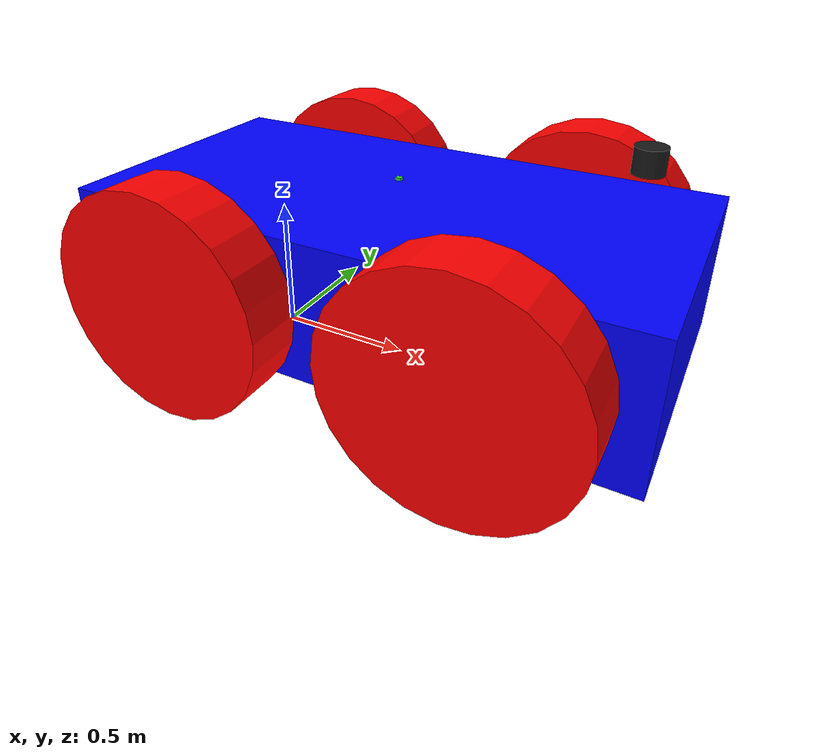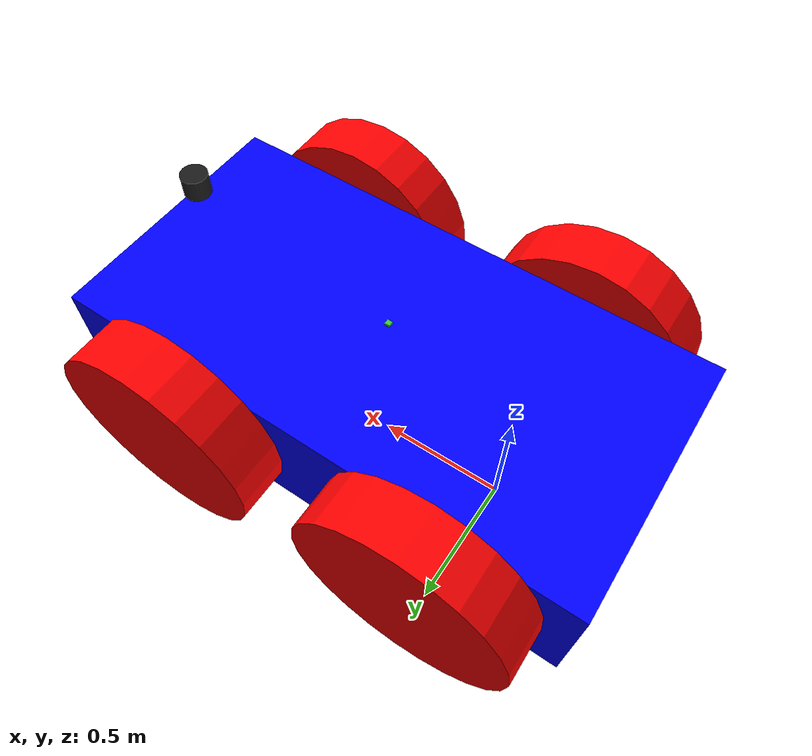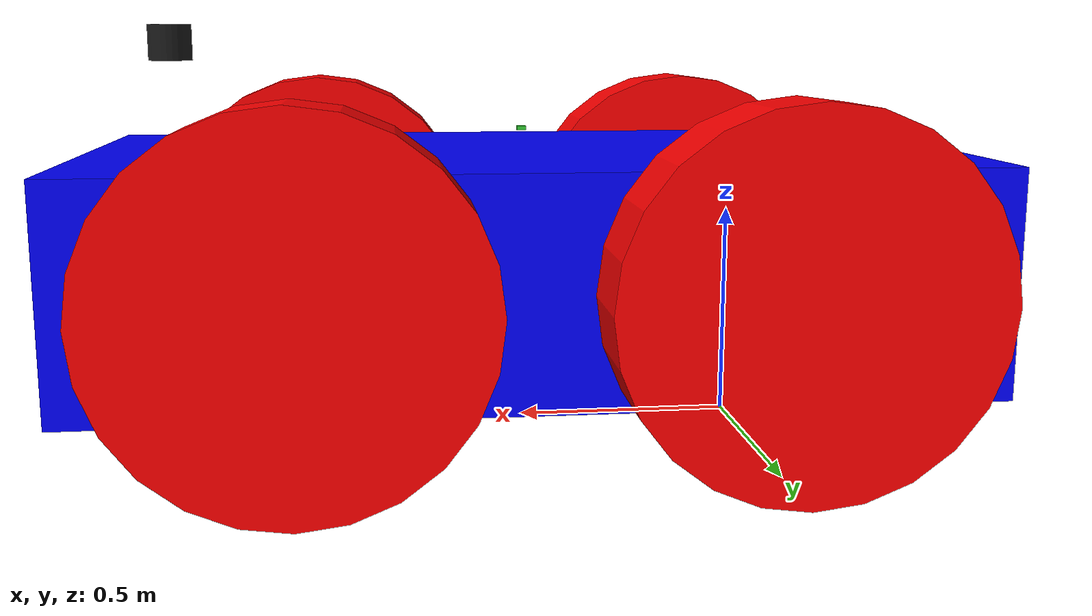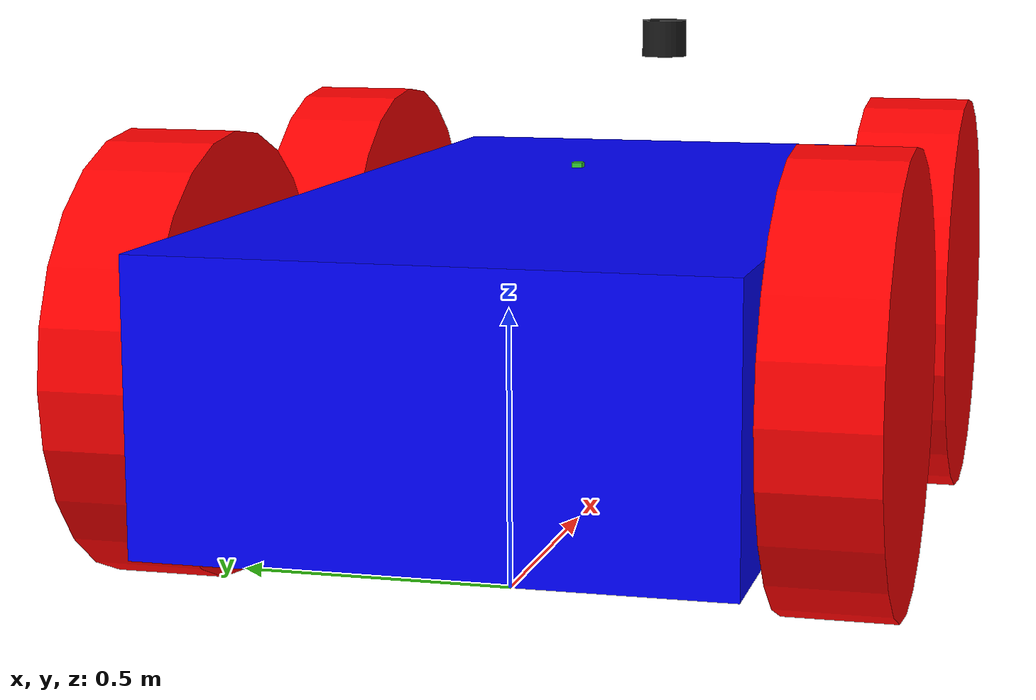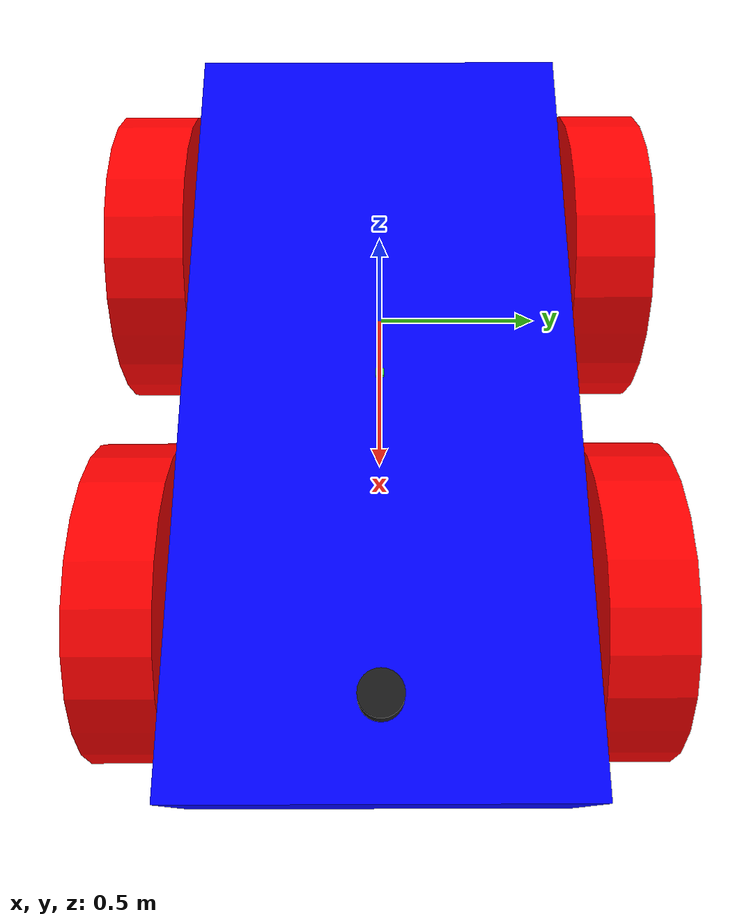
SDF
<?xml version="1.0" ?>
<sdf version="1.7">
    <model name='vehicle_robot' canonical_link='chassis'>
        <pose>0 0 0 0 0 0</pose>

        <link name='chassis'>
            <pose relative_to='__model__'>0.5 0 0.4 0 0 0</pose>
            <inertial>
                <mass>1.14395</mass>
                <inertia>
                    <ixx>0.095329</ixx>
                    <ixy>0</ixy>
                    <ixz>0</ixz>
                    <iyy>0.381317</iyy>
                    <iyz>0</iyz>
                    <izz>0.476646</izz>
                </inertia>
            </inertial>
            <visual name='visual'>
                <geometry>
                    <box>
                        <size>2.0 1.0 0.5</size>
                    </box>
                </geometry>
                <material>
                    <ambient>0.0 0.0 1.0 1</ambient>
                    <diffuse>0.0 0.0 1.0 1</diffuse>
                    <specular>0.0 0.0 1.0 1</specular>
                </material>
            </visual>
            <collision name='collision'>
                <geometry>
                    <box>
                        <size>2.0 1.0 0.5</size>
                    </box>
                </geometry>
            </collision>
        </link>

        <!-- IMU 传感器 Link -->
        <link name='imu_link'>
            <pose relative_to="chassis">0 0 0.3 0 0 0</pose>  <!-- IMU 位置：chassis 中心上方 30cm -->
            <inertial>
                <mass>0.02</mass>  <!-- IMU 重量 20g -->
                <inertia>
                    <ixx>0.000001</ixx>
                    <ixy>0</ixy>
                    <ixz>0</ixz>
                    <iyy>0.000001</iyy>
                    <iyz>0</iyz>
                    <izz>0.000001</izz>
                </inertia>
            </inertial>
            <visual name='visual'>
                <geometry>
                    <box>
                        <size>0.02 0.02 0.01</size>  <!-- 小方块：2cm x 2cm x 1cm -->
                    </box>
                </geometry>
                <material>
                    <ambient>0.2 0.8 0.2 1</ambient>  <!-- 绿色 -->
                    <diffuse>0.2 0.8 0.2 1</diffuse>
                    <specular>0.2 0.8 0.2 1</specular>
                </material>
            </visual>
            <collision name='collision'>
                <geometry>
                    <box>
                        <size>0.02 0.02 0.01</size>
                    </box>
                </geometry>
            </collision>

            <!-- IMU传感器 -->
            <sensor name="imu_sensor" type="imu">
                <pose>0 0 0 0 0 0</pose>  <!-- 传感器在 imu_link 中心 -->
                <always_on>1</always_on>
                <update_rate>100</update_rate>  <!-- 提高到 100 Hz -->
                <visualize>true</visualize>
                <topic>imu</topic>
                <ignition_frame_id>vehicle_robot/imu_link</ignition_frame_id>  <!-- 更新 frame_id -->
                <imu>
                    <!-- 添加噪声参数，让 IMU 数据更真实 -->
                    <angular_velocity>
                        <x>
                            <noise type="gaussian">
                                <mean>0.0</mean>
                                <stddev>2e-4</stddev>
                            </noise>
                        </x>
                        <y>
                            <noise type="gaussian">
                                <mean>0.0</mean>
                                <stddev>2e-4</stddev>
                            </noise>
                        </y>
                        <z>
                            <noise type="gaussian">
                                <mean>0.0</mean>
                                <stddev>2e-4</stddev>
                            </noise>
                        </z>
                    </angular_velocity>
                    <linear_acceleration>
                        <x>
                            <noise type="gaussian">
                                <mean>0.0</mean>
                                <stddev>1.7e-2</stddev>
                            </noise>
                        </x>
                        <y>
                            <noise type="gaussian">
                                <mean>0.0</mean>
                                <stddev>1.7e-2</stddev>
                            </noise>
                        </y>
                        <z>
                            <noise type="gaussian">
                                <mean>0.0</mean>
                                <stddev>1.7e-2</stddev>
                            </noise>
                        </z>
                    </linear_acceleration>
                    <!-- 添加方向噪声（关键！） -->
                    <orientation>
                        <x>
                            <noise type="gaussian">
                                <mean>0.0</mean>
                                <stddev>0.00017</stddev>
                            </noise>
                        </x>
                        <y>
                            <noise type="gaussian">
                                <mean>0.0</mean>
                                <stddev>0.00017</stddev>
                            </noise>
                        </y>
                        <z>
                            <noise type="gaussian">
                                <mean>0.0</mean>
                                <stddev>0.00017</stddev>
                            </noise>
                        </z>
                    </orientation>
                </imu>
            </sensor>
        </link>

        <!-- IMU Joint：将 IMU 连接到底盘 -->
        <joint name='imu_joint' type='fixed'>
            <child>imu_link</child>
            <parent>chassis</parent>
        </joint>

        <!-- 激光雷达 Link -->
        <link name='lidar_link'>
            <pose relative_to="chassis">0.8 0 0.5 0 0 0</pose>
            <inertial>
                <mass>0.1</mass>  <!-- 雷达重量 100g -->
                <inertia>
                    <ixx>0.000167</ixx>
                    <ixy>0</ixy>
                    <ixz>0</ixz>
                    <iyy>0.000167</iyy>
                    <iyz>0</iyz>
                    <izz>0.000167</izz>
                </inertia>
            </inertial>
            <visual name='visual'>
                <geometry>
                    <cylinder>
                        <radius>0.04875</radius> <!-- 原0.05→48.75mm，匹配R2直径97.5mm -->
                        <length>0.0805</length>  <!-- 原0.07→80.5mm，匹配R2高度 -->
                    </cylinder>
                </geometry>
                <material>
                    <ambient>0.1 0.1 0.1 1</ambient>
                    <diffuse>0.1 0.1 0.1 1</diffuse>
                    <specular>0.1 0.1 0.1 1</specular>
                </material>
            </visual>
            <collision name='collision'>
                <geometry>
                    <cylinder>
                        <radius>0.04875</radius>
                        <length>0.0805</length>
                    </cylinder>
                </geometry>
            </collision>

            <!-- 激光雷达传感器 -->
            <sensor name='gpu_lidar' type='gpu_lidar'>
                <pose>0 0 0 0 0 0</pose>  <!-- 传感器在 lidar_link 中心 -->
                <topic>lidar</topic>
                <update_rate>30</update_rate>
                <ignition_frame_id>vehicle_robot/lidar_link</ignition_frame_id>  <!-- 更新 frame_id -->
                <ray>
                    <scan>
                        <horizontal>
                        <!-- 1. 水平采样数：3600个（R2雷达0.1°角分辨率，360°/3600=0.1°），原360需改为3600 -->
                        <samples>3600</samples>
                        <resolution>1</resolution>
                        <!-- 2. 水平角度范围：R2是360°全向扫描，原-π~π（180°）需改为0~2π -->
                        <min_angle>0.0</min_angle>
                        <max_angle>6.28319</max_angle> <!-- 2π rad = 360° -->
                        </horizontal>
                        <vertical>
                        <!-- 3. 垂直参数：R2是单线雷达，保持1个采样点即可 -->
                        <samples>1</samples>
                        <resolution>0.01</resolution>
                        <min_angle>0</min_angle>
                        <max_angle>0</max_angle>
                        </vertical>
                    </scan>
                    <range>
                        <!-- 4. 测距范围：R2有效范围0.1~45m，原10.0需改为45.0 -->
                        <min>0.1</min>
                        <max>45.0</max>
                        <resolution>0.01</resolution>
                    </range>
                    <!-- 5. 新增噪声配置（匹配R2测距误差：±20~30mm） -->
                    <noise>
                        <type>gaussian</type>
                        <mean>0.0</mean>
                        <stddev>0.02</stddev> <!-- 标准差20mm，覆盖中短距误差，长距可调整为0.03 -->
                    </noise>
                </ray>
                <always_on>1</always_on>
                <visualize>true</visualize>
            </sensor>
        </link>

        <!-- 雷达 Joint：将雷达连接到底盘 -->
        <joint name='lidar_joint' type='fixed'>
            <child>lidar_link</child>
            <parent>chassis</parent>
        </joint>

        <!-- Rear left wheel -->
        <link name='left_rear_wheel'>
            <pose relative_to="chassis">-0.5 0.6 0 -1.5707 0 0</pose>
            <inertial>
                <mass>1</mass>
                <inertia>
                    <ixx>0.043333</ixx>
                    <ixy>0</ixy>
                    <ixz>0</ixz>
                    <iyy>0.043333</iyy>
                    <iyz>0</iyz>
                    <izz>0.08</izz>
                </inertia>
            </inertial>
            <visual name='visual'>
                <geometry>
                    <cylinder>
                        <radius>0.4</radius>
                        <length>0.2</length>
                    </cylinder>
                </geometry>
                <material>
                    <ambient>1.0 0.0 0.0 1</ambient>
                    <diffuse>1.0 0.0 0.0 1</diffuse>
                    <specular>1.0 0.0 0.0 1</specular>
                </material>
            </visual>
            <collision name='collision'>
                <geometry>
                    <cylinder>
                        <radius>0.4</radius>
                        <length>0.2</length>
                    </cylinder>
                </geometry>
            </collision>
        </link>

        <!-- Rear right wheel -->
        <link name='right_rear_wheel'>
            <pose relative_to="chassis">-0.5 -0.6 0 -1.5707 0 0</pose>
            <inertial>
                <mass>1</mass>
                <inertia>
                    <ixx>0.043333</ixx>
                    <ixy>0</ixy>
                    <ixz>0</ixz>
                    <iyy>0.043333</iyy>
                    <iyz>0</iyz>
                    <izz>0.08</izz>
                </inertia>
            </inertial>
            <visual name='visual'>
                <geometry>
                    <cylinder>
                        <radius>0.4</radius>
                        <length>0.2</length>
                    </cylinder>
                </geometry>
                <material>
                    <ambient>1.0 0.0 0.0 1</ambient>
                    <diffuse>1.0 0.0 0.0 1</diffuse>
                    <specular>1.0 0.0 0.0 1</specular>
                </material>
            </visual>
            <collision name='collision'>
                <geometry>
                    <cylinder>
                        <radius>0.4</radius>
                        <length>0.2</length>
                    </cylinder>
                </geometry>
            </collision>
        </link>

        <!-- Front left wheel -->
        <link name='left_front_wheel'>
            <pose relative_to="chassis">0.5 0.6 0 -1.5707 0 0</pose>
            <inertial>
                <mass>1</mass>
                <inertia>
                    <ixx>0.043333</ixx>
                    <ixy>0</ixy>
                    <ixz>0</ixz>
                    <iyy>0.043333</iyy>
                    <iyz>0</iyz>
                    <izz>0.08</izz>
                </inertia>
            </inertial>
            <visual name='visual'>
                <geometry>
                    <cylinder>
                        <radius>0.4</radius>
                        <length>0.2</length>
                    </cylinder>
                </geometry>
                <material>
                    <ambient>1.0 0.0 0.0 1</ambient>
                    <diffuse>1.0 0.0 0.0 1</diffuse>
                    <specular>1.0 0.0 0.0 1</specular>
                </material>
            </visual>
            <collision name='collision'>
                <geometry>
                    <cylinder>
                        <radius>0.4</radius>
                        <length>0.2</length>
                    </cylinder>
                </geometry>
            </collision>
        </link>

        <!-- Front right wheel -->
        <link name='right_front_wheel'>
            <pose relative_to="chassis">0.5 -0.6 0 -1.5707 0 0</pose>
            <inertial>
                <mass>1</mass>
                <inertia>
                    <ixx>0.043333</ixx>
                    <ixy>0</ixy>
                    <ixz>0</ixz>
                    <iyy>0.043333</iyy>
                    <iyz>0</iyz>
                    <izz>0.08</izz>
                </inertia>
            </inertial>
            <visual name='visual'>
                <geometry>
                    <cylinder>
                        <radius>0.4</radius>
                        <length>0.2</length>
                    </cylinder>
                </geometry>
                <material>
                    <ambient>1.0 0.0 0.0 1</ambient>
                    <diffuse>1.0 0.0 0.0 1</diffuse>
                    <specular>1.0 0.0 0.0 1</specular>
                </material>
            </visual>
            <collision name='collision'>
                <geometry>
                    <cylinder>
                        <radius>0.4</radius>
                        <length>0.2</length>
                    </cylinder>
                </geometry>
            </collision>
        </link>
        <!-- Rear left wheel joint -->
        <joint name='left_rear_wheel_joint' type='revolute'>
            <pose relative_to='left_rear_wheel'/>
            <parent>chassis</parent>
            <child>left_rear_wheel</child>
            <axis>
                <xyz expressed_in='__model__'>0 1 0</xyz>
                <limit>
                    <lower>-1.79769e+308</lower>
                    <upper>1.79769e+308</upper>
                </limit>
            </axis>
        </joint>

        <!-- Rear right wheel joint -->
        <joint name='right_rear_wheel_joint' type='revolute'>
            <pose relative_to='right_rear_wheel'/>
            <parent>chassis</parent>
            <child>right_rear_wheel</child>
            <axis>
                <xyz expressed_in='__model__'>0 1 0</xyz>
                <limit>
                    <lower>-1.79769e+308</lower>
                    <upper>1.79769e+308</upper>
                </limit>
            </axis>
        </joint>

        <!-- Front left wheel joint -->
        <joint name='left_front_wheel_joint' type='revolute'>
            <pose relative_to='left_front_wheel'/>
            <parent>chassis</parent>
            <child>left_front_wheel</child>
            <axis>
                <xyz expressed_in='__model__'>0 1 0</xyz>
                <limit>
                    <lower>-1.79769e+308</lower>
                    <upper>1.79769e+308</upper>
                </limit>
            </axis>
        </joint>

        <!-- Front right wheel joint -->
        <joint name='right_front_wheel_joint' type='revolute'>
            <pose relative_to='right_front_wheel'/>
            <parent>chassis</parent>
            <child>right_front_wheel</child>
            <axis>
                <xyz expressed_in='__model__'>0 1 0</xyz>
                <limit>
                    <lower>-1.79769e+308</lower>
                    <upper>1.79769e+308</upper>
                </limit>
            </axis>
        </joint>

        <!-- Differential drive plugin for 4-wheel drive -->
        <plugin
            filename="libignition-gazebo-diff-drive-system.so"
            name="ignition::gazebo::systems::DiffDrive">
            <left_joint>left_rear_wheel_joint</left_joint>
            <left_joint>left_front_wheel_joint</left_joint>
            <right_joint>right_rear_wheel_joint</right_joint>
            <right_joint>right_front_wheel_joint</right_joint>
            <wheel_separation>1.2</wheel_separation>
            <wheel_radius>0.4</wheel_radius>
            <odom_publish_frequency>50</odom_publish_frequency>  <!-- 提高到 50Hz，避免 TF 外推警告 -->
            <topic>cmd_vel</topic>
        </plugin>

        <!-- 配置四个方向键的控制指令 -->
        <!-- Moving Forward-->
        <plugin filename="libignition-gazebo-triggered-publisher-system.so"
                name="ignition::gazebo::systems::TriggeredPublisher">
            <input type="ignition.msgs.Int32" topic="/keyboard/keypress">
                <match field="data">16777235</match>
            </input>
            <output type="ignition.msgs.Twist" topic="/cmd_vel">
                linear: {x: 2}, angular: {z: 0.0}
            </output>
        </plugin>

        <!-- Moving Backward-->
        <plugin filename="libignition-gazebo-triggered-publisher-system.so"
                name="ignition::gazebo::systems::TriggeredPublisher">
            <input type="ignition.msgs.Int32" topic="/keyboard/keypress">
                <match field="data">16777237</match>
            </input>
            <output type="ignition.msgs.Twist" topic="/cmd_vel">
                linear: {x: -2}, angular: {z: 0.0}
            </output>
        </plugin>

        <!-- Rotating right-->
        <plugin filename="libignition-gazebo-triggered-publisher-system.so"
                name="ignition::gazebo::systems::TriggeredPublisher">
            <input type="ignition.msgs.Int32" topic="/keyboard/keypress">
                <match field="data">16777236</match>
            </input>
            <output type="ignition.msgs.Twist" topic="/cmd_vel">
                linear: {x: 0.0}, angular: {z: -1.5}
            </output>
        </plugin>

        <!--Rotating left-->
        <plugin filename="libignition-gazebo-triggered-publisher-system.so"
                name="ignition::gazebo::systems::TriggeredPublisher">
            <input type="ignition.msgs.Int32" topic="/keyboard/keypress">
                <match field="data">16777234</match>
            </input>
            <output type="ignition.msgs.Twist" topic="/cmd_vel">
                linear: {x: 0.0}, angular: {z: 1.5}
            </output>
        </plugin>

        <!-- 碰撞后停止 -->
        <plugin filename="libignition-gazebo-triggered-publisher-system.so"
                name="ignition::gazebo::systems::TriggeredPublisher">
            <input type="ignition.msgs.Boolean" topic="/wall/touched">
                <match>data: true</match>
            </input>
            <output type="ignition.msgs.Twist" topic="/cmd_vel">
                linear: {x: 0.0}, angular: {z: 0.0}
            </output>
        </plugin>

        <!-- IMU传感器 -->
        <plugin filename="libignition-gazebo-imu-system.so"
                name="ignition::gazebo::systems::Imu">
        </plugin>

        <!-- 激光雷达传感器 -->
        <plugin
            filename="libignition-gazebo-sensors-system.so"
            name="ignition::gazebo::systems::Sensors">
            <render_engine>ogre2</render_engine>
        </plugin>

        <!-- Joint State Publisher 插件 -->
        <plugin
            filename="libignition-gazebo-joint-state-publisher-system.so"
            name="ignition::gazebo::systems::JointStatePublisher">
            <joint_name>left_rear_wheel_joint</joint_name>
            <joint_name>right_rear_wheel_joint</joint_name>
            <joint_name>left_front_wheel_joint</joint_name>
            <joint_name>right_front_wheel_joint</joint_name>
        </plugin>
    </model>
</sdf>
